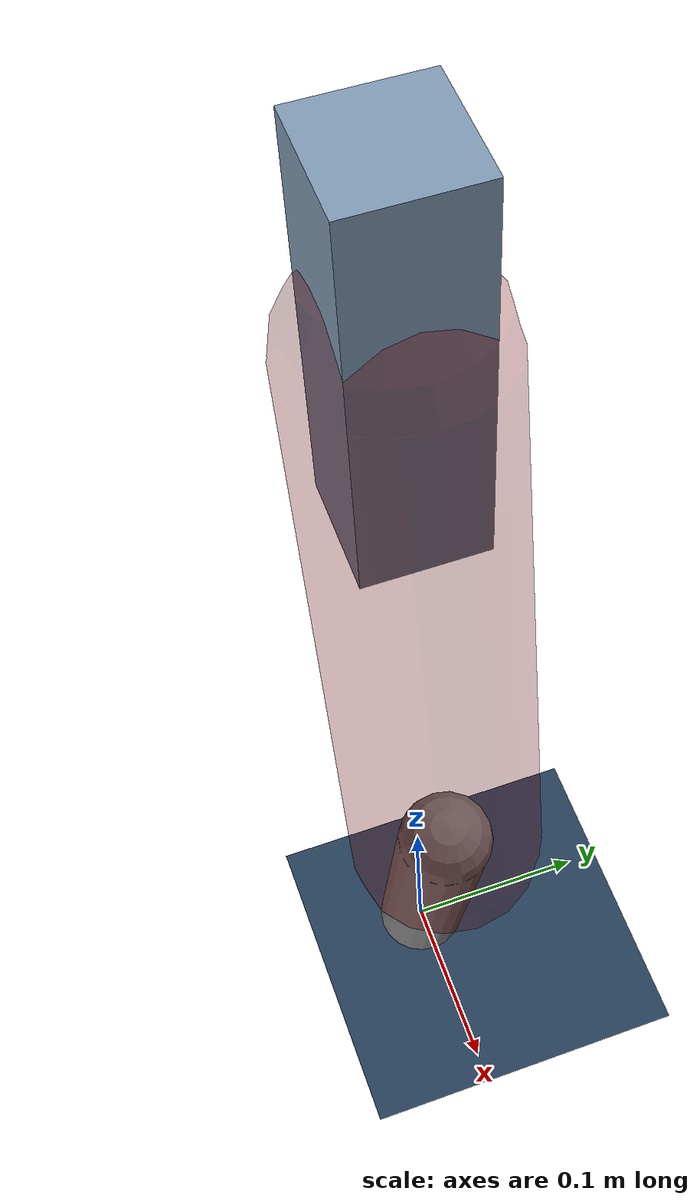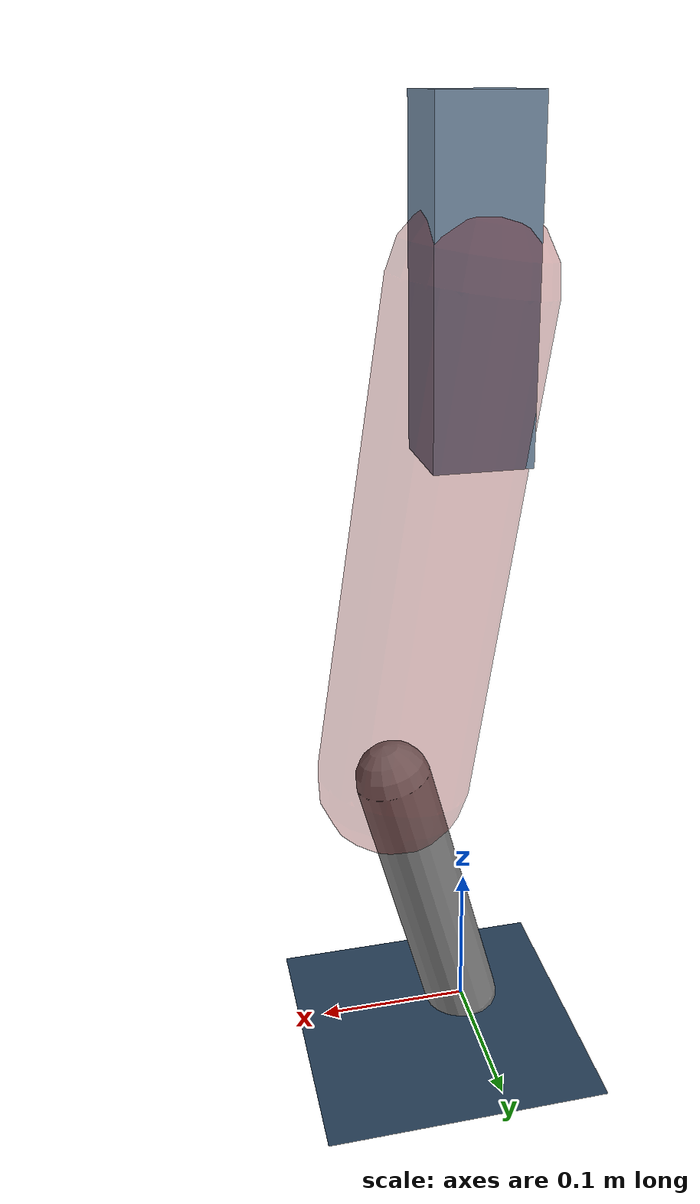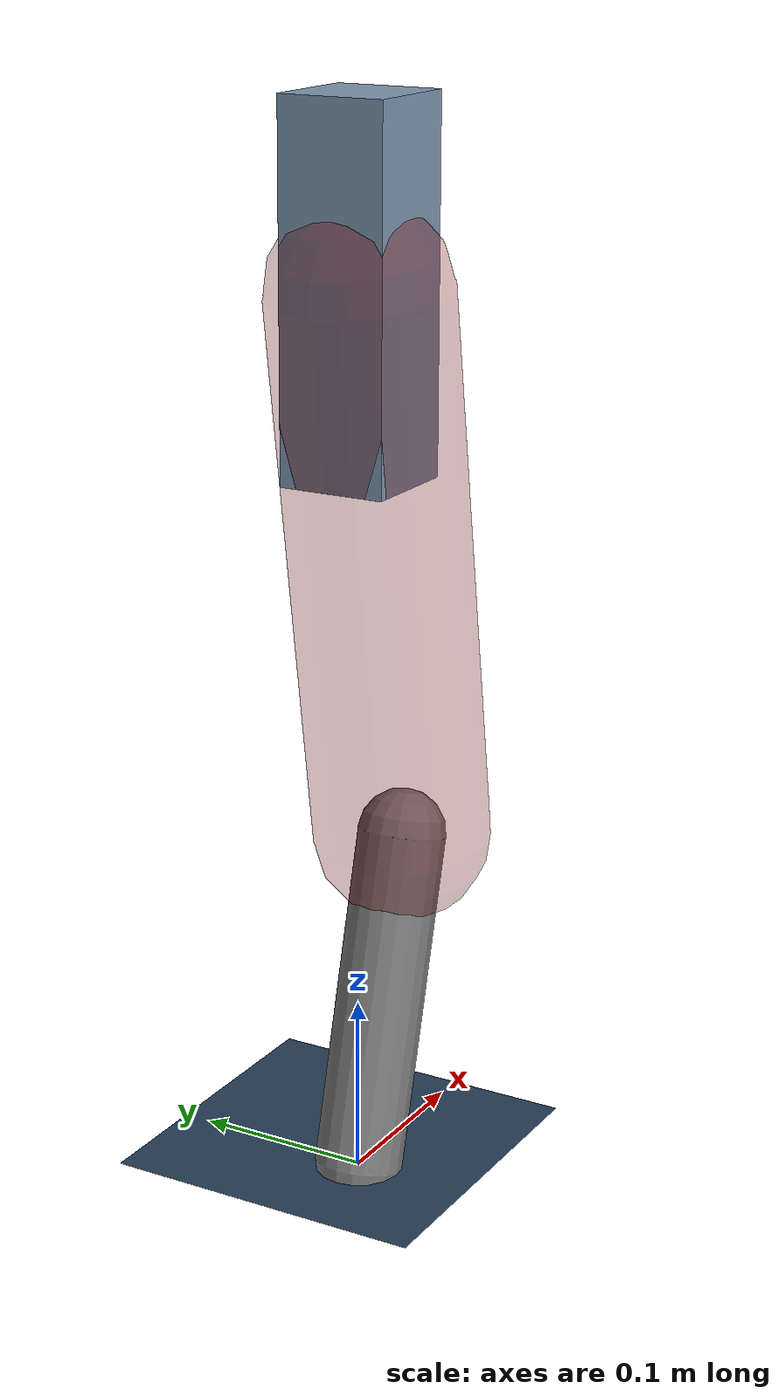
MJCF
<mujoco model="Hopper2D">
	<compiler inertiafromgeom="true" angle="radian" />
	<option timestep="0.001" integrator="implicit" cone="elliptic" solver="Newton" tolerance="1e-10" />

	<default>
		<geom contype="1" conaffinity="1" condim="3" friction="2 0.005 0.0001" solref="0.005 1" />
		<joint limited="true" damping="0.1" />
	</default>

	<asset>
		<texture name="skybox" type="skybox" builtin="gradient" rgb1=".4 .6 .8" rgb2="0 0 0" width="800" height="800" />
		<texture name="grid" type="2d" builtin="checker" rgb1=".1 .2 .3" rgb2=".2 .3 .4" width="300" height="300" mark="edge" markrgb=".2 .3 .4" />
		<material name="ground" texture="grid" texrepeat="1 1" texuniform="true" reflectance="0.1" />
		<material name="leg" rgba="0.5 0.6 0.7 1" />
	</asset>

	<worldbody>

		<geom name="floor" type="plane" size="5 5 0.25" material="ground" />

		<light directional="false" diffuse="0.8 0.8 0.8" specular="0.3 0.3 0.3" pos="0 0 2" dir="0 0 -1" />
		<light mode="targetbodycom" target="base" directional="false" diffuse="0.8 0.8 0.8" specular="0.3 0.3 0.3" pos="0 0 2" dir="0 0 -1" />

		<camera name="fixed" pos="0 -2 1" xyaxes="1 0 0 0 0 1" />
		<camera name="tracking" mode="trackcom" pos="0 -3 1" />

		<body name="root" pos="0 0 0.49822537206216466">
			<joint name="slide_x" type="slide" axis="1 0 0" range="-100 100" />
			<joint name="slide_z" type="slide" axis="0 0 1" range="0 10" />

			<body name="base" pos="0 0 0">
				<geom name="torso" type="box" size="0.03 0.03 0.1" mass="2.319" material="leg" />

				<body name="link1" pos="0 0 0" euler="0 1.4165217395777792 0">
					<joint type="hinge" axis="0 -1 0" pos="0 0 0" name="hinge1" limited="true" range="-3.14 3.14" stiffness="0" damping="0.1" />
					<geom name="thigh" type="capsule" fromto="0 0 0 0.31615009361974683 0 0" size="0.05" rgba="0.5 0 0 0.3" mass="1.0327052527733165" />

					<body name="link2" pos="0.31615009361974683 0 0" euler="0 0.4099771700803873 0">
						<joint type="hinge" axis="0 -1 0" pos="0 0 0" name="hinge2" limited="true" range="-3.14 3.14" stiffness="0" damping="0.1" />
						<geom name="shank" type="capsule" fromto="0 0 0 0.19207527844241784 0 0" size="0.025" mass="0.39416775059817605" />

					</body>
				</body>
			</body>
		</body>
	</worldbody>

	<actuator>
		<motor name="torque1" joint="hinge1" ctrlrange="-62.19055829688497 62.19055829688497" ctrllimited="true" gear="1" />
		<motor name="torque2" joint="hinge2" ctrlrange="-95.39777079462421 95.39777079462421" ctrllimited="true" gear="1" />
	</actuator>
</mujoco>
